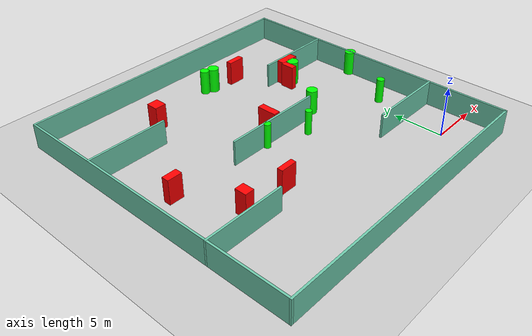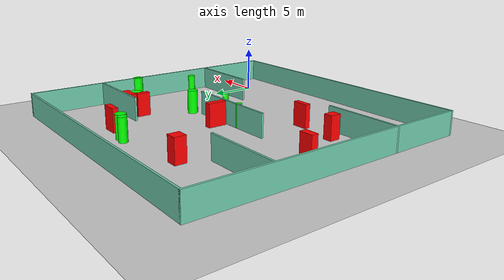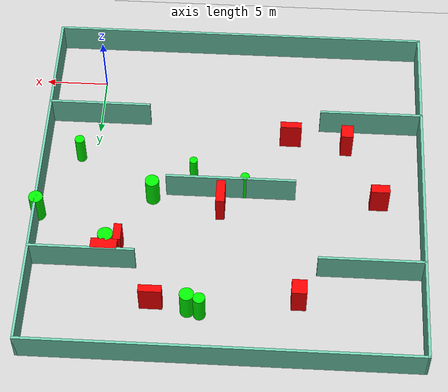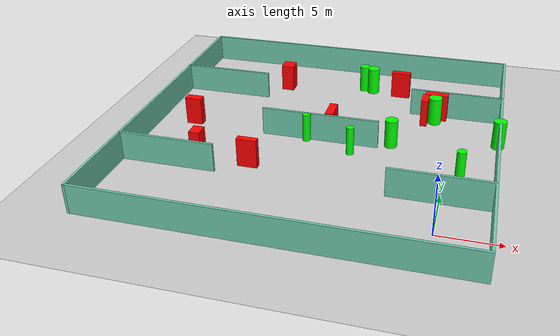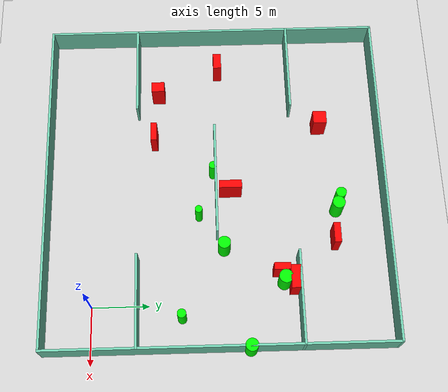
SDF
<sdf version="1.7">
 <world name="default">
  <light name="sun" type="directional">
   <pose>0 0 10 0 -0 0</pose>
   <diffuse>0.8 0.8 0.8 1</diffuse>
   <specular>0.2 0.2 0.2 1</specular>
   <attenuation>
    <range>1000</range>
    <constant>0.9</constant>
    <linear>0.01</linear>
    <quadratic>0.001</quadratic>
   </attenuation>
   <direction>-0.5 0.1 -0.9</direction>
   <spot><inner_angle>0</inner_angle><outer_angle>0</outer_angle><falloff>0</falloff></spot>
  </light>
  <model name="ground_plane">
   <static>1</static>
   <link name="link">
    <collision name="collision">
     <geometry><plane><normal>0 0 1</normal><size>100 100</size></plane></geometry>
     <surface>
      <contact><collide_bitmask>65535</collide_bitmask></contact>
      <friction><ode><mu>100</mu><mu2>50</mu2></ode></friction>
     </surface>
    </collision>
    <visual name="visual">
     <cast_shadows>0</cast_shadows>
     <geometry><plane><normal>0 0 1</normal><size>100 100</size></plane></geometry>
     <material>
      <script><uri>file://media/materials/scripts/gazebo.material</uri><name>Gazebo/Grey</name></script>
     </material>
    </visual>
   </link>
  </model>
  <gravity>0 0 -9.8</gravity>
  <magnetic_field>6e-06 2.3e-05 -4.2e-05</magnetic_field>
  <atmosphere type="adiabatic"/>
  <physics type="ode">
   <max_step_size>0.001</max_step_size>
   <real_time_factor>1</real_time_factor>
   <real_time_update_rate>1000</real_time_update_rate>
  </physics>
  <scene><ambient>0.4 0.4 0.4 1</ambient><background>0.7 0.7 0.7 1</background><shadows>1</shadows></scene>
  <spherical_coordinates>
   <surface_model>EARTH_WGS84</surface_model>
   <latitude_deg>0</latitude_deg>
   <longitude_deg>0</longitude_deg>
   <elevation>0</elevation>
   <heading_deg>0</heading_deg>
  </spherical_coordinates>
  <model name="my_base_walls">
   <link name="Wall_10">
    <collision name="Wall_10_Collision">
     <geometry><box><size>8.2 0.2 2.5</size></box></geometry>
     <pose>0 0 1.25 0 -0 0</pose>
    </collision>
    <visual name="Wall_10_Visual">
     <pose>0 0 1.25 0 -0 0</pose>
     <geometry><box><size>8.2 0.2 2.5</size></box></geometry>
     <material>
      <script><uri>file://media/materials/scripts/gazebo.material</uri><name>Gazebo/Grey</name></script>
      <ambient>0.435294 0.796078 0.67451 1</ambient>
     </material>
     <meta><layer>0</layer></meta>
    </visual>
    <pose>-11 -7 0 0 -0 0</pose>
   </link>
   <link name="Wall_12">
    <collision name="Wall_12_Collision">
     <geometry><box><size>8.2 0.2 2.5</size></box></geometry>
     <pose>0 0 1.25 0 -0 0</pose>
    </collision>
    <visual name="Wall_12_Visual">
     <pose>0 0 1.25 0 -0 0</pose>
     <geometry><box><size>8.2 0.2 2.5</size></box></geometry>
     <material>
      <script><uri>file://media/materials/scripts/gazebo.material</uri><name>Gazebo/Grey</name></script>
      <ambient>0.435294 0.796078 0.67451 1</ambient>
     </material>
     <meta><layer>0</layer></meta>
    </visual>
    <pose>-11 7 0 0 -0 0</pose>
   </link>
   <link name="Wall_14">
    <collision name="Wall_14_Collision">
     <geometry><box><size>8.2 0.2 2.5</size></box></geometry>
     <pose>0 0 1.25 0 -0 0</pose>
    </collision>
    <visual name="Wall_14_Visual">
     <pose>0 0 1.25 0 -0 0</pose>
     <geometry><box><size>8.2 0.2 2.5</size></box></geometry>
     <material>
      <script><uri>file://media/materials/scripts/gazebo.material</uri><name>Gazebo/Grey</name></script>
      <ambient>0.435294 0.796078 0.67451 1</ambient>
     </material>
     <meta><layer>0</layer></meta>
    </visual>
    <pose>11 7 0 0 -0 3.14159</pose>
   </link>
   <link name="Wall_16">
    <collision name="Wall_16_Collision">
     <geometry><box><size>10.2 0.2 2.5</size></box></geometry>
     <pose>0 0 1.25 0 -0 0</pose>
    </collision>
    <visual name="Wall_16_Visual">
     <pose>0 0 1.25 0 -0 0</pose>
     <geometry><box><size>10.2 0.2 2.5</size></box></geometry>
     <material>
      <script><uri>file://media/materials/scripts/gazebo.material</uri><name>Gazebo/Grey</name></script>
      <ambient>0.435294 0.796078 0.67451 1</ambient>
     </material>
     <meta><layer>0</layer></meta>
    </visual>
    <pose>0 0 0 0 -0 3.14159</pose>
   </link>
   <link name="Wall_2">
    <collision name="Wall_2_Collision">
     <geometry><box><size>30.2 0.2 2.5</size></box></geometry>
     <pose>0 0 1.25 0 -0 0</pose>
    </collision>
    <visual name="Wall_2_Visual">
     <pose>0 0 1.25 0 -0 0</pose>
     <geometry><box><size>30.2 0.2 2.5</size></box></geometry>
     <material>
      <script><uri>file://media/materials/scripts/gazebo.material</uri><name>Gazebo/Grey</name></script>
      <ambient>0.435294 0.796078 0.67451 1</ambient>
     </material>
     <meta><layer>0</layer></meta>
    </visual>
    <pose>0 -15 0 0 -0 3.14159</pose>
   </link>
   <link name="Wall_3">
    <collision name="Wall_3_Collision">
     <geometry><box><size>30.2 0.2 2.5</size></box></geometry>
     <pose>0 0 1.25 0 -0 0</pose>
    </collision>
    <visual name="Wall_3_Visual">
     <pose>0 0 1.25 0 -0 0</pose>
     <geometry><box><size>30.2 0.2 2.5</size></box></geometry>
     <material>
      <script><uri>file://media/materials/scripts/gazebo.material</uri><name>Gazebo/Grey</name></script>
      <ambient>0.435294 0.796078 0.67451 1</ambient>
     </material>
     <meta><layer>0</layer></meta>
    </visual>
    <pose>-15 0 0 0 -0 1.5708</pose>
   </link>
   <link name="Wall_4">
    <collision name="Wall_4_Collision">
     <geometry><box><size>30.2 0.2 2.5</size></box></geometry>
     <pose>0 0 1.25 0 -0 0</pose>
    </collision>
    <visual name="Wall_4_Visual">
     <pose>0 0 1.25 0 -0 0</pose>
     <geometry><box><size>30.2 0.2 2.5</size></box></geometry>
     <material>
      <script><uri>file://media/materials/scripts/gazebo.material</uri><name>Gazebo/Grey</name></script>
      <ambient>0.435294 0.796078 0.67451 1</ambient>
     </material>
     <meta><layer>0</layer></meta>
    </visual>
    <pose>0 15 0 0 -0 0</pose>
   </link>
   <link name="Wall_6">
    <collision name="Wall_6_Collision">
     <geometry><box><size>30.2 0.2 2.5</size></box></geometry>
     <pose>0 0 1.25 0 -0 0</pose>
    </collision>
    <visual name="Wall_6_Visual">
     <pose>0 0 1.25 0 -0 0</pose>
     <geometry><box><size>30.2 0.2 2.5</size></box></geometry>
     <material>
      <script><uri>file://media/materials/scripts/gazebo.material</uri><name>Gazebo/Grey</name></script>
      <ambient>0.435294 0.796078 0.67451 1</ambient>
     </material>
     <meta><layer>0</layer></meta>
    </visual>
    <pose>15 0 0 0 -0 1.5708</pose>
   </link>
   <link name="Wall_8">
    <collision name="Wall_8_Collision">
     <geometry><box><size>8.2 0.2 2.5</size></box></geometry>
     <pose>0 0 1.25 0 -0 0</pose>
    </collision>
    <visual name="Wall_8_Visual">
     <pose>0 0 1.25 0 -0 0</pose>
     <geometry><box><size>8.2 0.2 2.5</size></box></geometry>
     <material>
      <script><uri>file://media/materials/scripts/gazebo.material</uri><name>Gazebo/Grey</name></script>
      <ambient>0.435294 0.796078 0.67451 1</ambient>
     </material>
     <meta><layer>0</layer></meta>
    </visual>
    <pose>11 -7 0 0 -0 3.14159</pose>
   </link>
   <static>1</static>
   <pose>-11 11 0 0 -0 0</pose>
  </model>
  <model name="cylinder1">
   <static>1</static>
   <link name="link">
    <inertial>
     <mass>1</mass>
     <inertia><ixx>0.5</ixx><ixy>0</ixy><ixz>0</ixz><iyy>0.5</iyy><iyz>0</iyz><izz>1</izz></inertia>
    </inertial>
    <collision name="collision">
     <geometry><cylinder><radius>0.3224203755051921</radius><length>2.5</length></cylinder></geometry>
    </collision>
    <visual name="visual">
     <geometry><cylinder><radius>0.3224203755051921</radius><length>2.5</length></cylinder></geometry>
     <material>
      <ambient>0 1 0 1</ambient>
      <diffuse>0 1 0 1</diffuse>
      <specular>0.1 0.1 0.1 1</specular>
      <emissive>0 0 0 0</emissive>
     </material>
    </visual>
   </link>
   <pose>-7.982307994260829 9.420490670391317 1.25 0 0 0</pose>
  </model>
  <model name="cylinder2">
   <static>1</static>
   <link name="link">
    <inertial>
     <mass>1</mass>
     <inertia><ixx>0.5</ixx><ixy>0</ixy><ixz>0</ixz><iyy>0.5</iyy><iyz>0</iyz><izz>1</izz></inertia>
    </inertial>
    <collision name="collision">
     <geometry><cylinder><radius>0.5961712448817749</radius><length>2.5</length></cylinder></geometry>
    </collision>
    <visual name="visual">
     <geometry><cylinder><radius>0.5961712448817749</radius><length>2.5</length></cylinder></geometry>
     <material>
      <ambient>0 1 0 1</ambient>
      <diffuse>0 1 0 1</diffuse>
      <specular>0.1 0.1 0.1 1</specular>
      <emissive>0 0 0 0</emissive>
     </material>
    </visual>
   </link>
   <pose>-1.7532339514697775 16.720024341518354 1.25 0 0 0</pose>
  </model>
  <model name="cylinder3">
   <static>1</static>
   <link name="link">
    <inertial>
     <mass>1</mass>
     <inertia><ixx>0.5</ixx><ixy>0</ixy><ixz>0</ixz><iyy>0.5</iyy><iyz>0</iyz><izz>1</izz></inertia>
    </inertial>
    <collision name="collision">
     <geometry><cylinder><radius>0.5506607522723537</radius><length>2.5</length></cylinder></geometry>
    </collision>
    <visual name="visual">
     <geometry><cylinder><radius>0.5506607522723537</radius><length>2.5</length></cylinder></geometry>
     <material>
      <ambient>0 1 0 1</ambient>
      <diffuse>0 1 0 1</diffuse>
      <specular>0.1 0.1 0.1 1</specular>
      <emissive>0 0 0 0</emissive>
     </material>
    </visual>
   </link>
   <pose>3.9678703273029825 13.57971613450967 1.25 0 0 0</pose>
  </model>
  <model name="cylinder4">
   <static>1</static>
   <link name="link">
    <inertial>
     <mass>1</mass>
     <inertia><ixx>0.5</ixx><ixy>0</ixy><ixz>0</ixz><iyy>0.5</iyy><iyz>0</iyz><izz>1</izz></inertia>
    </inertial>
    <collision name="collision">
     <geometry><cylinder><radius>0.4613590231770486</radius><length>2.5</length></cylinder></geometry>
    </collision>
    <visual name="visual">
     <geometry><cylinder><radius>0.4613590231770486</radius><length>2.5</length></cylinder></geometry>
     <material>
      <ambient>0 1 0 1</ambient>
      <diffuse>0 1 0 1</diffuse>
      <specular>0.1 0.1 0.1 1</specular>
      <emissive>0 0 0 0</emissive>
     </material>
    </visual>
   </link>
   <pose>-9.216629118772197 21.98588282790683 1.25 0 0 0</pose>
  </model>
  <model name="cylinder5">
   <static>1</static>
   <link name="link">
    <inertial>
     <mass>1</mass>
     <inertia><ixx>0.5</ixx><ixy>0</ixy><ixz>0</ixz><iyy>0.5</iyy><iyz>0</iyz><izz>1</izz></inertia>
    </inertial>
    <collision name="collision">
     <geometry><cylinder><radius>0.387079275122736</radius><length>2.5</length></cylinder></geometry>
    </collision>
    <visual name="visual">
     <geometry><cylinder><radius>0.387079275122736</radius><length>2.5</length></cylinder></geometry>
     <material>
      <ambient>0 1 0 1</ambient>
      <diffuse>0 1 0 1</diffuse>
      <specular>0.1 0.1 0.1 1</specular>
      <emissive>0 0 0 0</emissive>
     </material>
    </visual>
   </link>
   <pose>1.2108309021580723 7.8198723839359 1.25 0 0 0</pose>
  </model>
  <model name="cylinder6">
   <static>1</static>
   <link name="link">
    <inertial>
     <mass>1</mass>
     <inertia><ixx>0.5</ixx><ixy>0</ixy><ixz>0</ixz><iyy>0.5</iyy><iyz>0</iyz><izz>1</izz></inertia>
    </inertial>
    <collision name="collision">
     <geometry><cylinder><radius>0.5566291874408653</radius><length>2.5</length></cylinder></geometry>
    </collision>
    <visual name="visual">
     <geometry><cylinder><radius>0.5566291874408653</radius><length>2.5</length></cylinder></geometry>
     <material>
      <ambient>0 1 0 1</ambient>
      <diffuse>0 1 0 1</diffuse>
      <specular>0.1 0.1 0.1 1</specular>
      <emissive>0 0 0 0</emissive>
     </material>
    </visual>
   </link>
   <pose>-8.286245767837293 21.70770644729416 1.25 0 0 0</pose>
  </model>
  <model name="cylinder7">
   <static>1</static>
   <link name="link">
    <inertial>
     <mass>1</mass>
     <inertia><ixx>0.5</ixx><ixy>0</ixy><ixz>0</ixz><iyy>0.5</iyy><iyz>0</iyz><izz>1</izz></inertia>
    </inertial>
    <collision name="collision">
     <geometry><cylinder><radius>0.34370028396367575</radius><length>2.5</length></cylinder></geometry>
    </collision>
    <visual name="visual">
     <geometry><cylinder><radius>0.34370028396367575</radius><length>2.5</length></cylinder></geometry>
     <material>
      <ambient>0 1 0 1</ambient>
      <diffuse>0 1 0 1</diffuse>
      <specular>0.1 0.1 0.1 1</specular>
      <emissive>0 0 0 0</emissive>
     </material>
    </visual>
   </link>
   <pose>-12.104149793070043 10.772957271825204 1.25 0 0 0</pose>
  </model>
  <model name="cylinder8">
   <static>1</static>
   <link name="link">
    <inertial>
     <mass>1</mass>
     <inertia><ixx>0.5</ixx><ixy>0</ixy><ixz>0</ixz><iyy>0.5</iyy><iyz>0</iyz><izz>1</izz></inertia>
    </inertial>
    <collision name="collision">
     <geometry><cylinder><radius>0.5480217108186796</radius><length>2.5</length></cylinder></geometry>
    </collision>
    <visual name="visual">
     <geometry><cylinder><radius>0.5480217108186796</radius><length>2.5</length></cylinder></geometry>
     <material>
      <ambient>0 1 0 1</ambient>
      <diffuse>0 1 0 1</diffuse>
      <specular>0.1 0.1 0.1 1</specular>
      <emissive>0 0 0 0</emissive>
     </material>
    </visual>
   </link>
   <pose>-4.881003022420501 11.5693532927744 1.25 0 0 0</pose>
  </model>
  <model name="box1">
   <static>1</static>
   <link name="link">
    <inertial>
     <mass>1</mass>
     <inertia><ixx>0.083</ixx><ixy>0</ixy><ixz>0</ixz><iyy>0.083</iyy><iyz>0</iyz><izz>0.083</izz></inertia>
    </inertial>
    <collision name="collision">
     <geometry><box><size>0.692272073946798 2.0110574546629376 2.5</size></box></geometry>
    </collision>
    <visual name="visual">
     <geometry><box><size>0.692272073946798 2.0110574546629376 2.5</size></box></geometry>
     <material>
      <ambient>1 0 0 1</ambient>
      <diffuse>1 0 0 1</diffuse>
      <specular>0.1 0.1 0.1 1</specular>
      <emissive>0 0 0 0</emissive>
     </material>
    </visual>
    <sensor name="my_contact" type="contact">
     <contact><collision>box_collision</collision><topic>__default_topic__</topic></contact>
    </sensor>
   </link>
   <pose>-10.267794608040784 12.272006355201079 1.25 0 0 0</pose>
  </model>
  <model name="box2">
   <static>1</static>
   <link name="link">
    <inertial>
     <mass>1</mass>
     <inertia><ixx>0.083</ixx><ixy>0</ixy><ixz>0</ixz><iyy>0.083</iyy><iyz>0</iyz><izz>0.083</izz></inertia>
    </inertial>
    <collision name="collision">
     <geometry><box><size>0.9383556633350203 1.1640691250184212 2.5</size></box></geometry>
    </collision>
    <visual name="visual">
     <geometry><box><size>0.9383556633350203 1.1640691250184212 2.5</size></box></geometry>
     <material>
      <ambient>1 0 0 1</ambient>
      <diffuse>1 0 0 1</diffuse>
      <specular>0.1 0.1 0.1 1</specular>
      <emissive>0 0 0 0</emissive>
     </material>
    </visual>
    <sensor name="my_contact" type="contact">
     <contact><collision>box_collision</collision><topic>__default_topic__</topic></contact>
    </sensor>
   </link>
   <pose>-20.0836541319769 5.898246374963787 1.25 0 0 0</pose>
  </model>
  <model name="box3">
   <static>1</static>
   <link name="link">
    <inertial>
     <mass>1</mass>
     <inertia><ixx>0.083</ixx><ixy>0</ixy><ixz>0</ixz><iyy>0.083</iyy><iyz>0</iyz><izz>0.083</izz></inertia>
    </inertial>
    <collision name="collision">
     <geometry><box><size>1.7016344501831093 0.5606375823587962 2.5</size></box></geometry>
    </collision>
    <visual name="visual">
     <geometry><box><size>1.7016344501831093 0.5606375823587962 2.5</size></box></geometry>
     <material>
      <ambient>1 0 0 1</ambient>
      <diffuse>1 0 0 1</diffuse>
      <specular>0.1 0.1 0.1 1</specular>
      <emissive>0 0 0 0</emissive>
     </material>
    </visual>
    <sensor name="my_contact" type="contact">
     <contact><collision>box_collision</collision><topic>__default_topic__</topic></contact>
    </sensor>
   </link>
   <pose>-15.569265355856567 5.487772459980333 1.25 0 0 0</pose>
  </model>
  <model name="box4">
   <static>1</static>
   <link name="link">
    <inertial>
     <mass>1</mass>
     <inertia><ixx>0.083</ixx><ixy>0</ixy><ixz>0</ixz><iyy>0.083</iyy><iyz>0</iyz><izz>0.083</izz></inertia>
    </inertial>
    <collision name="collision">
     <geometry><box><size>1.75150576855913 0.5899990254774499 2.5</size></box></geometry>
    </collision>
    <visual name="visual">
     <geometry><box><size>1.75150576855913 0.5899990254774499 2.5</size></box></geometry>
     <material>
      <ambient>1 0 0 1</ambient>
      <diffuse>1 0 0 1</diffuse>
      <specular>0.1 0.1 0.1 1</specular>
      <emissive>0 0 0 0</emissive>
     </material>
    </visual>
    <sensor name="my_contact" type="contact">
     <contact><collision>box_collision</collision><topic>__default_topic__</topic></contact>
    </sensor>
   </link>
   <pose>-5.533923109086222 21.361702959065678 1.25 0 0 0</pose>
  </model>
  <model name="box5">
   <static>1</static>
   <link name="link">
    <inertial>
     <mass>1</mass>
     <inertia><ixx>0.083</ixx><ixy>0</ixy><ixz>0</ixz><iyy>0.083</iyy><iyz>0</iyz><izz>0.083</izz></inertia>
    </inertial>
    <collision name="collision">
     <geometry><box><size>1.4626052964127525 0.7301189086140523 2.5</size></box></geometry>
    </collision>
    <visual name="visual">
     <geometry><box><size>1.4626052964127525 0.7301189086140523 2.5</size></box></geometry>
     <material>
      <ambient>1 0 0 1</ambient>
      <diffuse>1 0 0 1</diffuse>
      <specular>0.1 0.1 0.1 1</specular>
      <emissive>0 0 0 0</emissive>
     </material>
    </visual>
    <sensor name="my_contact" type="contact">
     <contact><collision>box_collision</collision><topic>__default_topic__</topic></contact>
    </sensor>
   </link>
   <pose>-22.674043838832983 11.4203082640703 1.25 0 0 0</pose>
  </model>
  <model name="box6">
   <static>1</static>
   <link name="link">
    <inertial>
     <mass>1</mass>
     <inertia><ixx>0.083</ixx><ixy>0</ixy><ixz>0</ixz><iyy>0.083</iyy><iyz>0</iyz><izz>0.083</izz></inertia>
    </inertial>
    <collision name="collision">
     <geometry><box><size>1.156772414753796 1.2061442981161643 2.5</size></box></geometry>
    </collision>
    <visual name="visual">
     <geometry><box><size>1.156772414753796 1.2061442981161643 2.5</size></box></geometry>
     <material>
      <ambient>1 0 0 1</ambient>
      <diffuse>1 0 0 1</diffuse>
      <specular>0.1 0.1 0.1 1</specular>
      <emissive>0 0 0 0</emissive>
     </material>
    </visual>
    <sensor name="my_contact" type="contact">
     <contact><collision>box_collision</collision><topic>__default_topic__</topic></contact>
    </sensor>
   </link>
   <pose>-16.588164617091117 20.612484927719027 1.25 0 0 0</pose>
  </model>
  <model name="box7">
   <static>1</static>
   <link name="link">
    <inertial>
     <mass>1</mass>
     <inertia><ixx>0.083</ixx><ixy>0</ixy><ixz>0</ixz><iyy>0.083</iyy><iyz>0</iyz><izz>0.083</izz></inertia>
    </inertial>
    <collision name="collision">
     <geometry><box><size>2.011307622899119 0.8722013721559574 2.5</size></box></geometry>
    </collision>
    <visual name="visual">
     <geometry><box><size>2.011307622899119 0.8722013721559574 2.5</size></box></geometry>
     <material>
      <ambient>1 0 0 1</ambient>
      <diffuse>1 0 0 1</diffuse>
      <specular>0.1 0.1 0.1 1</specular>
      <emissive>0 0 0 0</emissive>
     </material>
    </visual>
    <sensor name="my_contact" type="contact">
     <contact><collision>box_collision</collision><topic>__default_topic__</topic></contact>
    </sensor>
   </link>
   <pose>-1.7240849616848912 17.57278364523358 1.25 0 0 0</pose>
  </model>
  <model name="box8">
   <static>1</static>
   <link name="link">
    <inertial>
     <mass>1</mass>
     <inertia><ixx>0.083</ixx><ixy>0</ixy><ixz>0</ixz><iyy>0.083</iyy><iyz>0</iyz><izz>0.083</izz></inertia>
    </inertial>
    <collision name="collision">
     <geometry><box><size>0.6042227437069545 1.425460800697165 2.5</size></box></geometry>
    </collision>
    <visual name="visual">
     <geometry><box><size>0.6042227437069545 1.425460800697165 2.5</size></box></geometry>
     <material>
      <ambient>1 0 0 1</ambient>
      <diffuse>1 0 0 1</diffuse>
      <specular>0.1 0.1 0.1 1</specular>
      <emissive>0 0 0 0</emissive>
     </material>
    </visual>
    <sensor name="my_contact" type="contact">
     <contact><collision>box_collision</collision><topic>__default_topic__</topic></contact>
    </sensor>
   </link>
   <pose>-2.641505948172661 16.45268625747777 1.25 0 0 0</pose>
  </model>
 </world>
</sdf>
